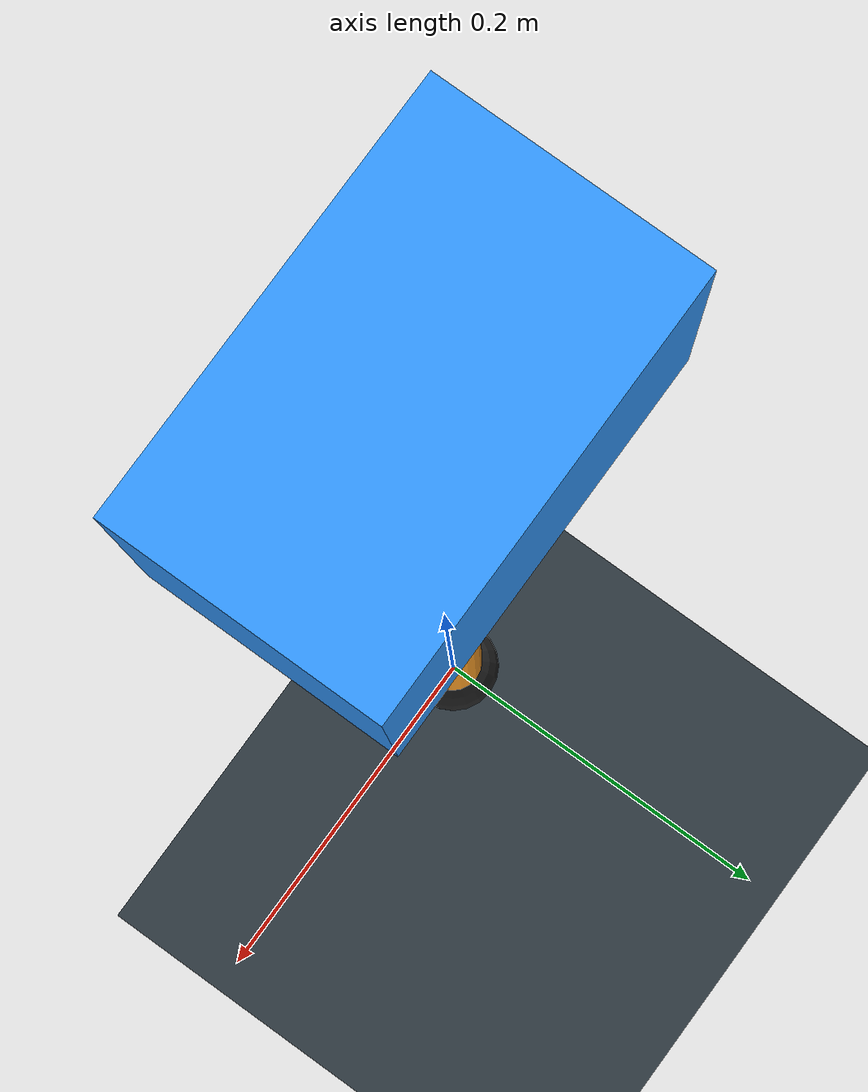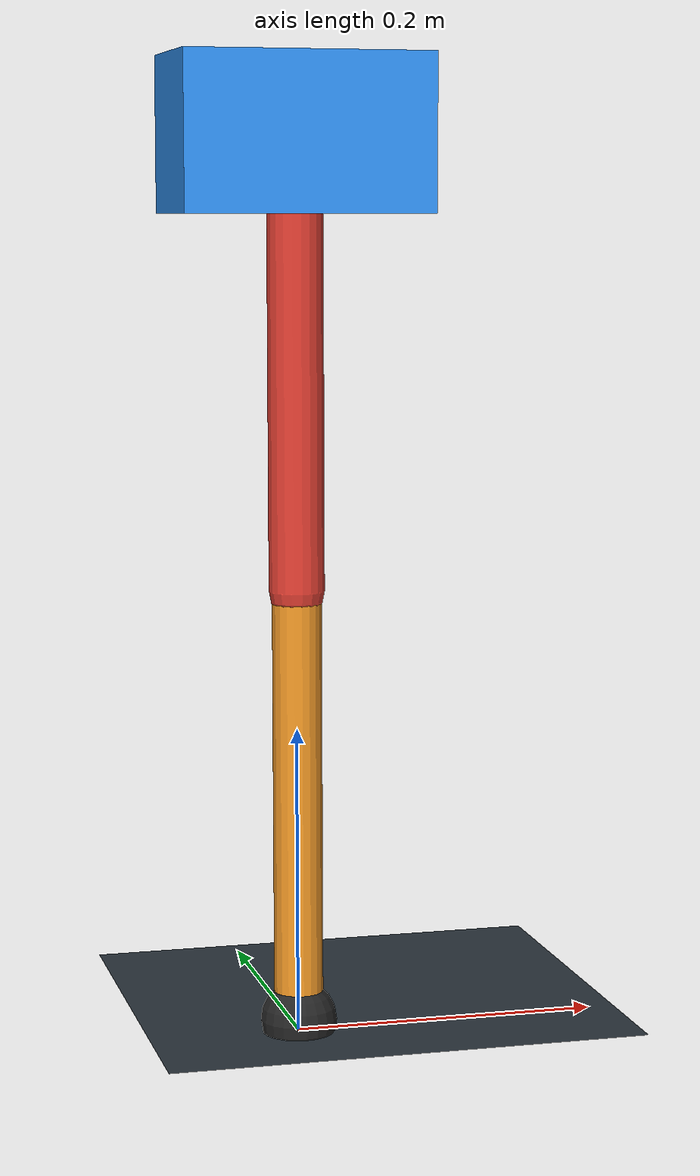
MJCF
<mujoco model="single_axis_two_bar">
  <compiler angle="radian" inertiafromgeom="true"/>
  <option timestep="0.001" integrator="implicitfast" gravity="0 0 -9.81"/>
  <default>
    <joint damping="0.08"/>
    <geom friction="1.2 0.01 0.0001" condim="3"/>
  </default>
  <worldbody>
    <geom name="floor" type="plane" size="5 5 0.1" rgba="0.18 0.22 0.25 1"/>
    <body name="carriage" pos="0 0 0.5822034263047007">
      <joint name="pole_slide" type="slide" axis="0 0 1"/>
      <geom name="payload" type="box" size="0.08 0.05 0.05" mass="2.5441464713948263" rgba="0.2 0.6 1 1"/>
      <body name="thigh" pos="0 0 0">
        <joint name="hip" type="hinge" axis="0 1 0"/>
        <geom name="thigh_link" type="capsule" fromto="0 0 0 0 0 -0.29175719872656614" size="0.018" mass="0.20788085932391878" rgba="0.9 0.25 0.2 1"/>
        <body name="shank" pos="0 0 -0.29175719872656614">
          <joint name="knee" type="hinge" axis="0 1 0"/>
          <geom name="shank_link" type="capsule" fromto="0 0 0 0 0 -0.2826793232370428" size="0.016" mass="0.20141275308409212" rgba="0.95 0.6 0.15 1"/>
          <geom name="foot" type="sphere" pos="0 0 -0.2826793232370428" size="0.025" mass="0.03" rgba="0.15 0.15 0.15 1"/>
          <site name="toe" pos="0 0 -0.2826793232370428" size="0.008"/>
        </body>
      </body>
    </body>
  </worldbody>
  <actuator>
    <motor name="hip_motor" joint="hip" ctrlrange="-49.44560733212257 49.44560733212257"/>
    <motor name="knee_motor" joint="knee" ctrlrange="-45.0194435209461 45.0194435209461"/>
  </actuator>
</mujoco>
